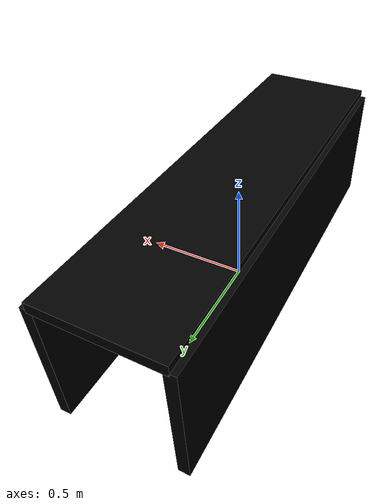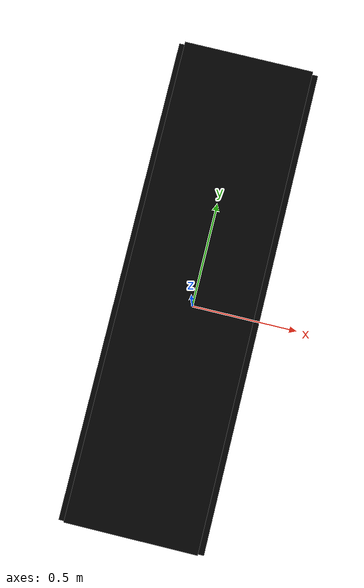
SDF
<?xml version="1.0" ?>
<sdf version="1.7">
  <model name="tunnel">
    <static>true</static>

    <!-- 왼쪽 기둥 -->
    <link name="pillar_left">
      <pose>-0.27 0 0.3 0 0 0</pose>
      <collision name="col">
        <geometry><box><size>0.05 2.0 0.6</size></box></geometry>
      </collision>
      <visual name="vis">
        <geometry><box><size>0.05 2.0 0.6</size></box></geometry>
        <material><ambient>0 0 0 1</ambient><diffuse>0 0 0 1</diffuse></material>
      </visual>
    </link>

    <!-- 오른쪽 기둥 -->
    <link name="pillar_right">
      <pose>0.27 0 0.3 0 0 0</pose>
      <collision name="col">
        <geometry><box><size>0.05 2.0 0.6</size></box></geometry>
      </collision>
      <visual name="vis">
        <geometry><box><size>0.05 2.0 0.6</size></box></geometry>
        <material><ambient>0 0 0 1</ambient><diffuse>0 0 0 1</diffuse></material>
      </visual>
    </link>

    <!-- 상부 보 -->
    <link name="beam_top">
      <pose>0 0 0.61 0 0 0</pose>
      <collision name="col">
        <geometry><box><size>0.54 2.0 0.05</size></box></geometry>
      </collision>
      <visual name="vis">
        <geometry><box><size>0.54 2.0 0.05</size></box></geometry>
        <material><ambient>0 0 0 1</ambient><diffuse>0 0 0 1</diffuse></material>
      </visual>
    </link>
  </model>
</sdf>
